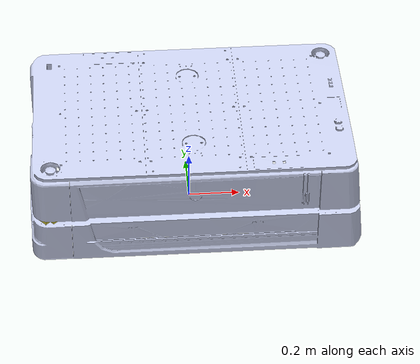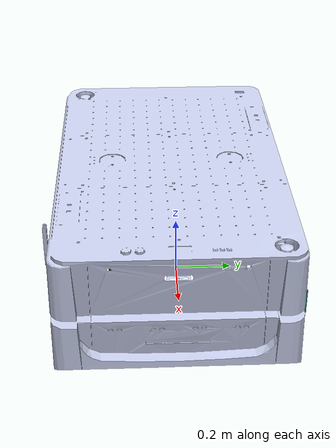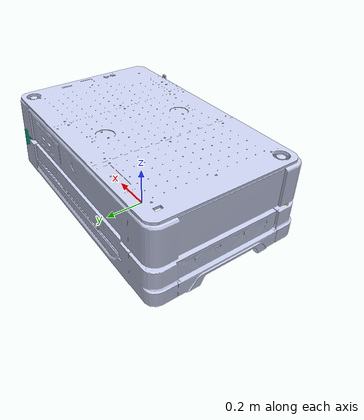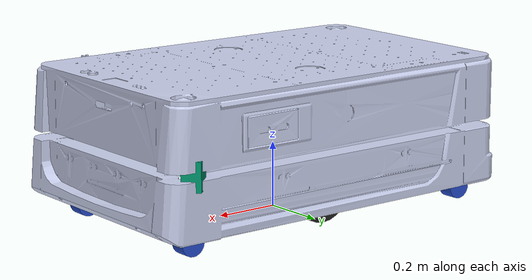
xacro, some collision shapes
<?xml version="1.0"?>
<robot name="scorpio" xmlns:xacro="http://www.ros.org/wiki/xacro">

  <xacro:arg name="ns" default=""/>
  <xacro:include filename="$(find scorpio_description)/urdf/base/base.urdf.xacro"/>

  <!-- gazebo plugin -->
  <xacro:include filename="$(find scorpio_description)/urdf/common.gazebo.xacro"/>

  <!-- robot base and wheel -->
  <xacro:scorpio_base ns="$(arg ns)"/>

  <!--5cm per grid on car--> <!--surface to ground is 0.455m-->
  <joint name="base_surface_joint" type="fixed">
    <origin xyz="-0.375 0.125 0.209" rpy="0 0 0" />
    <parent link="base_link" />
    <child link="surface_link" />
  </joint>
  <link name="surface_link"/>

</robot>

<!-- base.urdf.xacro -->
<robot xmlns:xacro="http://www.ros.org/wiki/xacro">
  <xacro:include filename="$(find scorpio_description)/urdf/sensors/hokuyo_utm30lx.urdf.xacro" />
  <xacro:include filename="$(find scorpio_description)/urdf/base/base.gazebo.xacro" />
  <xacro:include filename="$(find scorpio_description)/urdf/base/base.transmission.xacro" />

  <xacro:property name="pi" value="3.1415926535897931" />
  <xacro:property name="wheel_w" value="0.05" />
  <xacro:property name="passive_wheel_rad" value="0.0375" />
  <xacro:property name="active_wheel_rad" value="0.1" />

  <xacro:property name="psvwheel_mass" value="0.010" />
  <xacro:property name="actvwheel_mass" value="0.020" />

  <!-- Inertia calculating -->
  <xacro:macro name="cuboid_inertial" params="width height depth mass *origin">
    <inertial>
      <mass value="${mass}" />
      <xacro:insert_block name="origin" />
      <inertia ixx="${0.0833333 * mass * (depth * depth + height * height)}" ixy="0.0" ixz="0.0"
        iyy="${0.0833333 * mass * ( width * width + depth * depth)}" iyz="0.0"
        izz="${0.0833333 * mass * ( width * width + height * height)}" />
    </inertial>
  </xacro:macro>

  <!--left and right active wheel-->
  <xacro:macro name="rl_wheel" params="prefix reflect">
    <link name="${prefix}_wheel">
      <visual>
        <geometry>
          <cylinder length="${wheel_w}" radius="${active_wheel_rad}"/>
        </geometry>
        <origin rpy="${pi/2} 0 0" xyz="0 0 0"/>
        <material name="black"/>
      </visual>
      <collision>
        <geometry>
          <cylinder length="${wheel_w}" radius="${active_wheel_rad}"/>
        </geometry>
        <origin rpy="${pi/2} 0 0" xyz="0 0 0"/>
      </collision>
      <inertial>
        <mass value="0.010" />
        <origin rpy="${pi/2} 0 0" xyz="0 0 0" />
        <inertia
          ixx="${(1/12) * actvwheel_mass * (3 * active_wheel_rad * active_wheel_rad + wheel_w * wheel_w)}" ixy="0.0" ixz="0.0"
          iyy="${(1/12) * actvwheel_mass * (3 * active_wheel_rad * active_wheel_rad + wheel_w * wheel_w)}" iyz="0.0"
          izz="${0.5 * actvwheel_mass * active_wheel_rad * active_wheel_rad }" />
      </inertial>
    </link>
    <joint name="${prefix}_wheel_joint" type="continuous">
      <origin
        xyz="0.0 ${reflect * -0.218} -0.146"
        rpy="0 0 0" />
      <parent link="base_link" />
      <child link="${prefix}_wheel"/>
      <axis xyz="0 1 0" />
    </joint>

    <!-- extensions -->
    <xacro:scorpio_rl_wheel_gazebo prefix="${prefix}"/>
    <xacro:scorpio_wheel_transmission prefix="${prefix}"/>
  </xacro:macro>

  <!--front and back passive wheel-->
  <xacro:macro name="fb_wheel" params="prefix reflect">
    <link name="${prefix}_right_wheel">
      <inertial>
        <mass value="0.010" />
        <origin rpy="${pi/2} 0 0" xyz="0 0 0" />
        <inertia
          ixx="${(1/12) * psvwheel_mass * (3 * passive_wheel_rad * passive_wheel_rad + wheel_w * wheel_w)}" ixy="0.0" ixz="0.0"
          iyy="${(1/12) * psvwheel_mass * (3 * passive_wheel_rad * passive_wheel_rad + wheel_w * wheel_w)}" iyz="0.0"
          izz="${0.5 * psvwheel_mass * passive_wheel_rad * passive_wheel_rad }" />
      </inertial>
      <visual>
        <geometry>
          <cylinder length="${wheel_w}" radius="${passive_wheel_rad}"/>
        </geometry>
        <origin rpy="${pi/2} 0 0" xyz="0 0 0"/>
        <material name="blue"/>
      </visual>
      <collision>
        <geometry>
          <cylinder length="${wheel_w}" radius="${passive_wheel_rad}"/>
        </geometry>
        <origin rpy="${pi/2} 0 0" xyz="0 0 0"/>
      </collision>
    </link>
    <joint name="${prefix}_right_wheel_joint" type="fixed">
      <origin
        xyz="${reflect * 0.50975} -0.26714 -0.2085"
        rpy="0 0 0" />
      <parent link="base_link" />
      <child link="${prefix}_right_wheel"/>
      <axis xyz="0 0 0" />
    </joint>

    <link name="${prefix}_left_wheel">
      <visual>
        <geometry>
          <cylinder length="${wheel_w}" radius="${passive_wheel_rad}"/>
        </geometry>
        <origin rpy="${pi/2} 0 0" xyz="0 0 0"/>
        <material name="blue"/>
      </visual>
      <collision>
        <geometry>
          <cylinder length="${wheel_w}" radius="${passive_wheel_rad}"/>
        </geometry>
        <origin rpy="${pi/2} 0 0" xyz="0 0 0"/>
      </collision>
      <inertial>
        <mass value="0.010" />
        <origin rpy="${pi/2} 0 0" xyz="0 0 0" />
        <inertia
          ixx="${(1/12) * psvwheel_mass * (3 * passive_wheel_rad * passive_wheel_rad + wheel_w * wheel_w)}" ixy="0.0" ixz="0.0"
          iyy="${(1/12) * psvwheel_mass * (3 * passive_wheel_rad * passive_wheel_rad + wheel_w * wheel_w)}" iyz="0.0"
          izz="${0.5 * psvwheel_mass * passive_wheel_rad * passive_wheel_rad }" />
      </inertial>
    </link>
    <joint name="${prefix}_left_wheel_joint" type="fixed">
      <origin
        xyz="${reflect * 0.50975} 0.26714 -0.2085"
        rpy="0 0 0" />
      <parent link="base_link" />
      <child link="${prefix}_left_wheel"/>
      <axis xyz="0 0 0" />
    </joint>

    <!-- extensions -->
    <xacro:scorpio_fb_wheel_gazebo prefix="${prefix}"/>
  </xacro:macro>

  <xacro:macro name="scorpio_base" params="ns">
    <link name="base_footprint"/>

    <joint name="base_footprint_joint" type="fixed">
      <origin xyz="0 0 0.246" rpy="0 0 0" />
      <child link="base_link" />
      <parent link="base_footprint"/>
    </joint>

    <link name="base_link">
      <xacro:cuboid_inertial width="1.2" height="0.9" depth="0.5" mass="20">
        <origin xyz="0.0 0.0 0" rpy="0 0 0" />
      </xacro:cuboid_inertial>
      <visual>
        <origin xyz="0 0 0" rpy="0 0 0" />
        <geometry>
          <mesh filename="package://scorpio_description/meshes/base_link.STL" />
        </geometry>
        <material name="">
          <color rgba="0.792156862745098 0.819607843137255 0.933333333333333 1" />
        </material>
      </visual>
      <collision>
        <origin xyz="0 0 0" rpy="0 0 0" />
        <geometry>
          <mesh filename="package://scorpio_description/meshes/base_link.STL" />
          <!--box size="1.0 0.56 0.42"/-->
        </geometry>
      </collision>
    </link>

    <!-- virtual laser -->
    <joint name="vlaser_joint" type="fixed">
      <axis xyz="0 0 0"/>
      <origin xyz="0 0 0" rpy="0 0 0"/>
      <parent link="base_link"/>
      <child link="vlaser_link"/>
    </joint>
    <link name="vlaser_link"/>

    <!-- Sparkfun imu-->
    <joint name="imu_joint" type="fixed">
      <axis xyz="0 0 0"/>
      <origin xyz="0 0 0" rpy="0 0 0"/>
      <parent link="base_footprint"/>
      <child link="base_imu_link"/>
    </joint>
    <link name="base_imu_link"/>
    <xacro:scorpio_imu_gazebo/>

    <!-- wheel macros-->
    <xacro:rl_wheel prefix="right" reflect="1"/>
    <xacro:rl_wheel prefix="left" reflect="-1"/>
    <xacro:fb_wheel prefix="front" reflect="1"/>
    <xacro:fb_wheel prefix="back" reflect="-1"/>

    <!-- Hokuyo utm30lx, total_x_differ=1.09 total_y_differ=0.677 -->
    <xacro:hokuyo_utm30lx name="front" parent="base_link">
      <origin xyz="0.535 0.3285 0" rpy="0 0 0.7235"/>
    </xacro:hokuyo_utm30lx>
    <xacro:hokuyo_utm30lx name="back" parent="base_link">
      <origin xyz="-0.555 -0.3485 0" rpy="0 0 3.8833576"/>
    </xacro:hokuyo_utm30lx>

    <!-- ASUS Xtion Pro -->
    <!--xacro:asus_xtion_pro name="base_camera" parent="base_link" ns="${ns}"/-->

    <!-- extensions -->
    <xacro:scorpio_base_gazebo/>

  </xacro:macro>
</robot>

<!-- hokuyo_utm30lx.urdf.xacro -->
<robot xmlns:xacro="http://ros.org/wiki/xacro">
  <xacro:include filename="$(find scorpio_description)/urdf/sensors/hokuyo_utm30lx.gazebo.xacro" />
  <xacro:macro name="hokuyo_utm30lx" params="name parent *origin">

    <joint name="${name}_joint" type="fixed">
      <!--origin xyz="0.105 0.000 0.229" rpy="0 0 0" /-->
      <xacro:insert_block name="origin" />
      <parent link="${parent}"/>
      <child link="${name}_hokuyo_link"/>
    </joint>

    <link name="${name}_hokuyo_link">
      <visual>
        <origin xyz="0 0 0" rpy="0 0 0" />
        <geometry>
        <mesh filename="package://scorpio_description/meshes/hokuyo_utm30lx/hokuyo_utm_30lx.dae"/>
      </geometry>
      </visual>
      <collision>
        <origin xyz="0 0 0" rpy="0 0 0" />
        <geometry>
        <box size="0.058 0.058 0.087" />
      </geometry>
      </collision>
    </link>

    <!-- extensions -->
    <xacro:hokuyo_utm30lx_gazebo prefix="${name}" ros_topic="${name}_scan" update_rate="40" ray_count="720" min_angle="-2.355" max_angle="2.355" ns=""/>
  </xacro:macro>
</robot>
